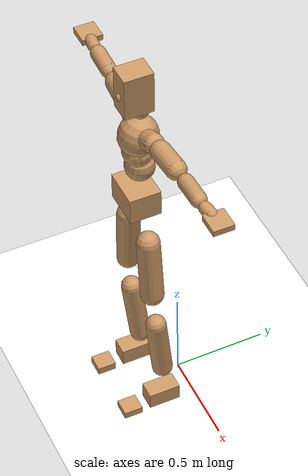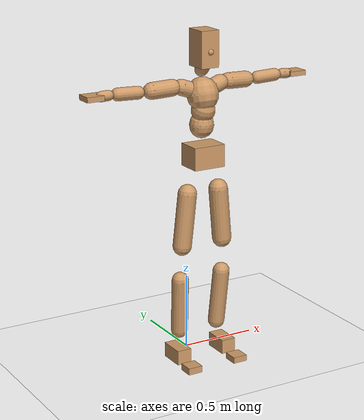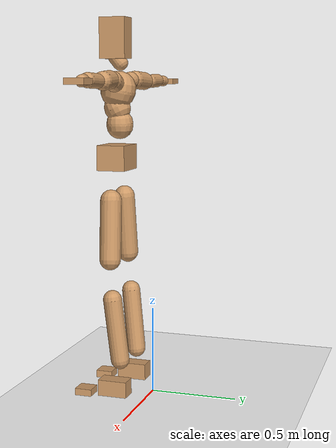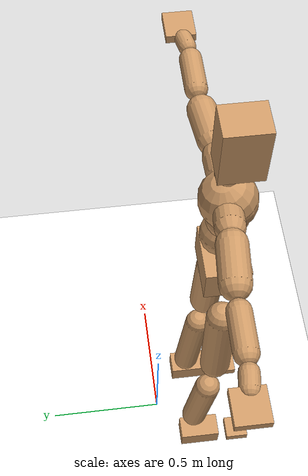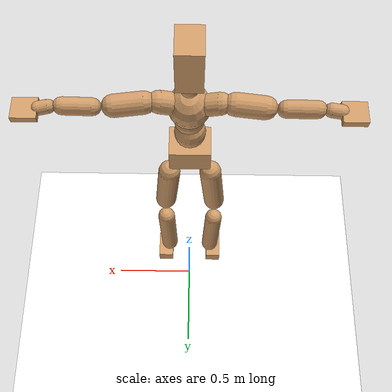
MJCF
<mujoco model="humanoid">
  <option integrator="implicitfast" />

  <visual>
    <global offwidth="1280" offheight="960" />
    <headlight active="1" ambient="0.34 0.34 0.34" diffuse="0.5 0.5 0.5" />
  </visual>

  <default>
    <joint damping="2" stiffness="2" armature="0.01" limited="true" solimplimit="0 .99 .01" />
    <geom condim="1" friction="0.7 0.005 0.0001" solimp=".99 .99 .003" solref="0.015 1" margin="0.001" rgba="0.8 0.6 .4 1" />
    <default class="smplcontact">
      <geom condim="3" friction="1. 0.005 0.0001" solref="0.015 1" solimp="0.98 0.98 0.001" priority="1" />
    </default>
    <default class="stiff_medium">
      <joint stiffness="10" />
    </default>
    <default class="stiff_medium_higher">
      <joint stiffness="50" />
    </default>
    <default class="stiff_high">
      <joint stiffness="100" />
    </default>
  </default>

  <asset>
    <texture type="skybox" builtin="gradient" rgb1="0.99 0.99 0.99" rgb2="0.608 0.828 0.892" width="100" />
    <texture builtin="flat" height="1278" mark="cross" markrgb="1 1 1" name="texgeom" random="0.01" rgb1="0.8 0.6 0.4" rgb2="0.8 0.6 0.4" type="cube" width="127" />
    <texture name="texplane" type="2d" builtin="checker" markrgb="1 1 1" rgb1="0.756 0.772 0.76" rgb2="0.6 0.6 0.6" width="100" height="100" />
    <material name="MatPlane" reflectance="0.5" texture="texplane" texrepeat="1 1" texuniform="true" />
    <material name="geom" texture="texgeom" texuniform="true" />
  </asset>

  <worldbody>
    <light name="tracking_light" pos="0 0 7" dir="0 0 -1" directional="true" cutoff="100" exponent="1" diffuse="1 1 1" specular="0.1 0.1 0.1" mode="trackcom" />
    <camera name="back" pos="0 3 2.4" xyaxes="-1 0 0 0 -1 2" mode="trackcom" />
    <camera name="side" pos="-3 0 2.4" xyaxes="0 -1 0 1 0 2" mode="trackcom" />
    <camera name="front_side" pos="-2.8 -2.8 0.8" xyaxes="0.5 -0.5 0 0.1 0.1 1" mode="trackcom" />
    <geom condim="3" name="floor" pos="0 0 0" rgba="1 1 1 1" size="100 100 .2" type="plane" material="MatPlane" />
    <body name="Pelvis" pos="-0.0018 -0.2233 1.39425" euler="90 0 0">
      <site name="Pelvis" size="0.01" />
      <freejoint name="Pelvis" />
      <geom type="box" pos="-0.0000 -0.0121 -0.0055" size="0.1069 0.0722 0.083" quat="1.0000 0.0000 0.0000 0.0000" density="3165.830099" name="Pelvis" />
      <body name="L_Hip" pos="0.10425 -0.1371 -0.0102">
        <joint name="L_Hip_x" type="hinge" pos="0 0 0" axis="1 0 0" stiffness="20.010395760869564" range="-160.0 22.92" class="stiff_medium" damping="35.828196311411354" armature="0.02851095036953482"/>
        <joint name="L_Hip_y" type="hinge" pos="0 0 0" axis="0 1 0" stiffness="19.865808913043477" range="-70.0 70.0" class="stiff_medium" damping="19.516651798556293" armature="0.01917363139318227"/>
        <joint name="L_Hip_z" type="hinge" pos="0 0 0" axis="0 0 1" stiffness="19.889777717391304" range="-28.65 90.0" class="stiff_medium" damping="23.81898353912802" armature="0.028524400066129187"/>
        <geom type="capsule" density="2040.816327" fromto="0.01035 -0.1125 -0.00135 0.0411 -0.4503 -0.0054" size="0.0615" name="L_Hip" />
        <body name="L_Knee" pos="0.05145 -0.5628 -0.00675">
          <joint name="L_Knee_x" type="hinge" pos="0 0 0" axis="1 0 0" range="-5.16 171.89" damping="17.97370958314121" armature="0.026396428561925697" stiffness="3.824549543478261"/>
          <joint name="L_Knee_y" type="hinge" pos="0 0 0" axis="0 1 0" range="-4.58 6.88" damping="14.94132977962483" armature="0.017722990590982583" stiffness="3.9363301589371975"/>
          <joint name="L_Knee_z" type="hinge" pos="0 0 0" axis="0 0 1" range="-6.88 4.58" damping="17.919426580121165" armature="0.02645515953053644" stiffness="3.7930437608695655"/>
          <geom type="capsule" density="1234.567901" fromto="-0.00405 -0.1194 -0.01305 -0.01635 -0.4776 -0.0525" size="0.0541" name="L_Knee" />
          <body name="L_Ankle" pos="-0.0204 -0.597 -0.06555">
            <joint name="L_Ankle_x" type="hinge" pos="0 0 0" axis="1 0 0" range="-45.84 45.84" class="stiff_medium" damping="9.919510798854871" armature="0.018221610090481188" stiffness="15.0"/>
            <joint name="L_Ankle_y" type="hinge" pos="0 0 0" axis="0 1 0" range="-74.48 22.92" class="stiff_medium" damping="4.917952818000751" armature="0.017915748088949284" stiffness="15.0"/>
            <joint name="L_Ankle_z" type="hinge" pos="0 0 0" axis="0 0 1" range="-4.58 4.58" class="stiff_medium" damping="9.269968981325572" armature="0.01591339350272931" stiffness="15.0"/>
            <geom type="box" pos="0.03495 -0.03585 0.0363" size="0.0483 0.0464 0.085" quat="1.0000 0.0000 0.0000 0.0000" density="449.071558" name="L_Ankle" class="smplcontact" />
            <body name="L_Toe" pos="0.0396 -0.0837 0.17895">
              <joint name="L_Toe_x" type="hinge" pos="0 0 0" axis="1 0 0" range="-91.67 22.92" armature="0.014752348892847546" damping="2.975131818207141" stiffness="3.0"/>
              <joint name="L_Toe_y" type="hinge" pos="0 0 0" axis="0 1 0" range="-4.58 4.58" armature="0.013348413454862205" damping="2.8300261611718933" stiffness="3.0"/>
              <joint name="L_Toe_z" type="hinge" pos="0 0 0" axis="0 0 1" range="-4.58 4.58" armature="0.01050973156573245" damping="2.5111429547995607" stiffness="3.0"/>
              <geom type="box" pos="-0.0045 0.00825 0.0372" size="0.0478 0.02 0.0496" quat="1.0000 0.0000 0.0000 0.0000" density="423.206892" name="L_Toe" class="smplcontact" />
            </body>
          </body>
        </body>
      </body>
      <body name="R_Hip" pos="-0.10155 -0.13575 -0.00645">
        <joint name="R_Hip_x" type="hinge" pos="0 0 0" axis="1 0 0" stiffness="20.010395760869564" range="-160.0 22.92" class="stiff_medium" damping="35.828196311411354" armature="0.02851095036953482"/>
        <joint name="R_Hip_y" type="hinge" pos="0 0 0" axis="0 1 0" stiffness="19.865808913043477" range="-70.0 70.0" class="stiff_medium" damping="19.516651798556293" armature="0.01917363139318227"/>
        <joint name="R_Hip_z" type="hinge" pos="0 0 0" axis="0 0 1" stiffness="19.889777717391304" range="-90.0 28.65" class="stiff_medium" damping="23.81898353912802" armature="0.028524400066129187"/>
        <geom type="capsule" density="2040.816327" fromto="-0.01155 -0.11475 -0.0027 -0.0459 -0.45915 -0.01065" size="0.0606" name="R_Hip" />
        <body name="R_Knee" pos="-0.05745 -0.5739 -0.01335">
          <joint name="R_Knee_x" type="hinge" pos="0 0 0" axis="1 0 0" range="-5.16 171.89" damping="17.97370958314121" armature="0.026396428561925697" stiffness="3.824549543478261"/>
          <joint name="R_Knee_y" type="hinge" pos="0 0 0" axis="0 1 0" range="-6.88 4.58" damping="14.94132977962483" armature="0.017722990590982583" stiffness="3.9363301589371975"/>
          <joint name="R_Knee_z" type="hinge" pos="0 0 0" axis="0 0 1" range="-4.58 6.88" damping="17.919426580121165" armature="0.02645515953053644" stiffness="3.7930437608695655"/>
          <geom type="capsule" density="1234.567901" fromto="0.0048 -0.11955 -0.01275 0.0189 -0.47805 -0.0507" size="0.0541" name="R_Knee" />
          <body name="R_Ankle" pos="0.0237 -0.5976 -0.06345">
            <joint name="R_Ankle_x" type="hinge" pos="0 0 0" axis="1 0 0" range="-45.84 45.84" class="stiff_medium" damping="9.919510798854871" armature="0.018221610090481188" stiffness="15.0"/>
            <joint name="R_Ankle_y" type="hinge" pos="0 0 0" axis="0 1 0" range="-22.92 74.48" class="stiff_medium" damping="4.917952818000751" armature="0.017915748088949284" stiffness="15.0"/>
            <joint name="R_Ankle_z" type="hinge" pos="0 0 0" axis="0 0 1" range="-4.58 4.58" class="stiff_medium" damping="9.269968981325572" armature="0.01591339350272931" stiffness="15.0"/>
            <geom type="box" pos="-0.0318 -0.0261 0.0384" size="0.0483 0.0478 0.0865" quat="1.0000 0.0000 0.0000 0.0000" density="434.700981" name="R_Ankle" class="smplcontact" />
            <body name="R_Toe" pos="-0.0381 -0.07215 0.18495">
              <joint name="R_Toe_x" type="hinge" pos="0 0 0" axis="1 0 0" range="-91.67 22.92" armature="0.014752348892847546" damping="2.975131818207141" stiffness="3.0"/>
              <joint name="R_Toe_y" type="hinge" pos="0 0 0" axis="0 1 0" range="-4.58 4.58" armature="0.013348413454862205" damping="2.8300261611718933" stiffness="3.0"/>
              <joint name="R_Toe_z" type="hinge" pos="0 0 0" axis="0 0 1" range="-4.58 4.58" armature="0.01050973156573245" damping="2.5111429547995607" stiffness="3.0"/>
              <geom type="box" pos="0.0063 0.00675 0.03405" size="0.0479 0.0216 0.0493" quat="1.0000 0.0000 0.0000 0.0000" density="407.384095" name="R_Toe" class="smplcontact" />
            </body>
          </body>
        </body>
      </body>
      <body name="Torso" pos="-0.0025 0.109 -0.0267">
        <joint name="Torso_x" type="hinge" pos="0 0 0" axis="1 0 0" range="-25.78 57.3" class="stiff_medium" damping="14.368828481187117" armature="0.009518929822817207" stiffness="9.63989"/>
        <joint name="Torso_y" type="hinge" pos="0 0 0" axis="0 1 0" range="-57.3 57.3" class="stiff_high" damping="17.03261776899825" armature="0.007489541703378379" stiffness="96.83839130434782"/>
        <joint name="Torso_z" type="hinge" pos="0 0 0" axis="0 0 1" range="-34.38 34.38" class="stiff_high" damping="18.53540157409633" armature="0.008825226346331871" stiffness="97.32359772727271"/>
        <geom type="capsule" density="2040.816327" fromto="0.0025 0.0608 0.0005 0.003 0.0743 0.0006" size="0.0769" name="Torso" />
        <body name="Spine" pos="0.0055 0.1352 0.0011">
          <joint name="Spine_x" type="hinge" pos="0 0 0" axis="1 0 0" stiffness="9.579701739130435" range="-25.78 57.3" class="stiff_medium" damping="14.264620493957935" armature="0.009440303089812753"/>
          <joint name="Spine_y" type="hinge" pos="0 0 0" axis="0 1 0" stiffness="9.580887826086956" range="-57.3 57.3" class="stiff_high" damping="6.768786682343357" armature="0.007471983870182018"/>
          <joint name="Spine_z" type="hinge" pos="0 0 0" axis="0 0 1" stiffness="19.031785652173912" range="-34.38 34.38" class="stiff_high" damping="10.695210451271533" armature="0.00834769619738185"/>
          <geom type="capsule" density="2040.816327" fromto="0.0007 0.0238 0.0114 0.0008 0.0291 0.014" size="0.0755" name="Spine" />
          <body name="Chest" pos="0.0015 0.0529 0.0254">
            <joint name="Chest_x" type="hinge" pos="0 0 0" axis="1 0 0" stiffness="9.409094782608697" range="-25.78 57.3" class="stiff_medium" damping="14.104409531967354" armature="0.009396788619791423"/>
            <joint name="Chest_y" type="hinge" pos="0 0 0" axis="0 1 0" stiffness="8.884800227272727" range="-57.3 57.3" class="stiff_high" damping="6.515670116194" armature="0.007466043829259931"/>
            <joint name="Chest_z" type="hinge" pos="0 0 0" axis="0 0 1" stiffness="18.982618260869568" range="-34.38 34.38" class="stiff_high" damping="10.547007863759625" armature="0.008138979020284558"/>
            <geom type="capsule" density="2040.816327" fromto="-0.0009 0.0682 -0.0173 -0.001 0.0833 -0.0212" size="0.1002" name="Chest" />
            <body name="Neck" pos="-0.0028 0.2139 -0.0429">
              <joint name="Neck_x" type="hinge" pos="0 0 0" axis="1 0 0" range="-28.65 57.3" class="stiff_medium_higher" damping="10.000000000000007" armature="0.010000000000000016" stiffness="50.0"/>
              <joint name="Neck_y" type="hinge" pos="0 0 0" axis="0 1 0" range="-40.11 40.11" class="stiff_medium_higher" damping="10.0" armature="0.010000000000000002" stiffness="50.0"/>
              <joint name="Neck_z" type="hinge" pos="0 0 0" axis="0 0 1" range="-40.11 40.11" class="stiff_medium_higher" damping="9.999999999999979" armature="0.009999999999999957" stiffness="50.0"/>
              <geom type="capsule" density="1000" fromto="0.001 0.013 0.0103 0.0041 0.052 0.0411" size="0.0436" name="Neck" />
              <body name="Head" pos="0.0052 0.065 0.0513">
                <joint name="Head_x" type="hinge" pos="0 0 0" axis="1 0 0" range="-28.65 57.3" class="stiff_medium_higher" damping="2.000000000000001" armature="0.010000000000000009" stiffness="50.0"/>
                <joint name="Head_y" type="hinge" pos="0 0 0" axis="0 1 0" range="-40.11 40.11" class="stiff_medium_higher" damping="1.9999999999999998" armature="0.009999999999999998" stiffness="50.0"/>
                <joint name="Head_z" type="hinge" pos="0 0 0" axis="0 0 1" range="-40.11 40.11" class="stiff_medium_higher" damping="1.9999999999999956" armature="0.009999999999999957" stiffness="50.0"/>
                <geom type="box" pos="-0.0042 0.0876 -0.0116" size="0.0606 0.1154 0.076" quat="1.0000 0.0000 0.0000 0.0000" density="1018.069894" name="Head" />
                <geom type="capsule" name="nose" size="0.02 0.01" pos="0 0.07 0.05" quat="1 0 0 0" mass="0" contype="0" conaffinity="0" />
              </body>
            </body>
            <body name="L_Thorax" pos="0.069935 0.108009 -0.0302637">
              <joint name="L_Thorax_x" type="hinge" pos="0 0 0" axis="1 0 0" range="-10.89 4.58" class="stiff_medium_higher" damping="16.505477260399466" armature="0.008237289712880578" stiffness="41.34108260869564"/>
              <joint name="L_Thorax_y" type="hinge" pos="0 0 0" axis="0 1 0" range="-28.65 17.19" class="stiff_medium_higher" damping="15.61471016999635" armature="0.007397181758642918" stiffness="41.201362499999995"/>
              <joint name="L_Thorax_z" type="hinge" pos="0 0 0" axis="0 0 1" range="-31.51 40.11" class="stiff_medium_higher" damping="15.614286291485106" armature="0.007396422580499296" stiffness="41.203354347826085"/>
              <geom type="capsule" density="1000" fromto="0.0161525 0.00541375 -0.0015975 0.06461 0.021655 -0.00630125" size="0.0521" name="L_Thorax" />
              <body name="L_Shoulder" pos="0.0807625 0.0270687 -0.00789875">
                <joint name="L_Shoulder_x" type="hinge" pos="0 0 0" axis="1 0 0" range="-97.4 97.4" class="stiff_medium" damping="5.052350459499108" armature="0.008561219507330948" stiffness="8.282258913043478"/>
                <joint name="L_Shoulder_y" type="hinge" pos="0 0 0" axis="0 1 0" range="-108.86 80.21" class="stiff_medium" damping="4.696705326036948" armature="0.0074248281922430735" stiffness="8.252731521739129"/>
                <joint name="L_Shoulder_z" type="hinge" pos="0 0 0" axis="0 0 1" range="-97.4 85.94" class="stiff_medium" damping="4.6961947056523545" armature="0.007423822707357082" stiffness="8.252054673913044"/>
                <geom type="capsule" density="1000" fromto="0.0460612 -0.0023075 -0.00488125 0.184334 -0.0090525 -0.019525" size="0.0517" name="L_Shoulder" />
                <body name="L_Elbow" pos="0.230395 -0.01136 -0.0244062">
                  <joint name="L_Elbow_x" type="hinge" pos="0 0 0" axis="1 0 0" range="-17.19 4.58" damping="4.357834099746246" armature="0.009089595760699684" stiffness="1.6714246521739127"/>
                  <joint name="L_Elbow_y" type="hinge" pos="0 0 0" axis="0 1 0" range="-180.0 17.19" damping="3.973981053627214" armature="0.007559999182253774" stiffness="1.6711668913043478"/>
                  <joint name="L_Elbow_z" type="hinge" pos="0 0 0" axis="0 0 1" range="-100.84 4.58" damping="3.9731711614276417" armature="0.007554721526974191" stiffness="1.6716527826086958"/>
                  <geom type="capsule" density="1000" fromto="0.0441975 0.0015975 -0.0001775 0.176967 0.00639 -0.00079875" size="0.0405" name="L_Elbow" />
                  <body name="L_Wrist" pos="0.221165 0.0079875 -0.001065">
                    <joint name="L_Wrist_x" type="hinge" pos="0 0 0" axis="1 0 0" range="-180.0 22.92" armature="0.009268388983615782" damping="1.7956064308763255" stiffness="1.7393543043478261"/>
                    <joint name="L_Wrist_y" type="hinge" pos="0 0 0" axis="0 1 0" range="-17.19 17.19" armature="0.008039907338787643" damping="1.6695087244197107" stiffness="1.7333902391304346"/>
                    <joint name="L_Wrist_z" type="hinge" pos="0 0 0" axis="0 0 1" range="-22.92 22.92" armature="0.007970783232335125" damping="1.6634253394624978" stiffness="1.7357038695652176"/>
                    <geom type="capsule" density="1000" fromto="0.01491 -0.00142 -0.0026625 0.05964 -0.00576875 -0.01065" size="0.0318" name="L_Wrist" class="smplcontact" />
                    <body name="L_Hand" pos="0.07455 -0.0072775 -0.0132237">
                      <joint name="L_Hand_x" type="hinge" pos="0 0 0" axis="1 0 0" range="-17.19 17.19" armature="0.009907489981019835" damping="1.8754085016113509" stiffness="1.7749990434782612"/>
                      <joint name="L_Hand_y" type="hinge" pos="0 0 0" axis="0 1 0" range="-51.57 51.57" armature="0.00888121416433484" damping="1.775620829266199" stiffness="1.7749990434782612"/>
                      <joint name="L_Hand_z" type="hinge" pos="0 0 0" axis="0 0 1" range="-91.67 91.67" armature="0.008607646402110739" damping="1.7480597104275448" stiffness="1.7749990000000002"/>
                      <geom type="box" pos="0.0437537 0.0008875 -0.0051475" size="0.0585 0.0158 0.0538" quat="1.0000 0.0000 0.0000 0.0000" density="400.552564" name="L_Hand" class="smplcontact" />
                    </body>
                  </body>
                </body>
              </body>
            </body>
            <body name="R_Thorax" pos="-0.0725975 0.105435 -0.0342575">
              <joint name="R_Thorax_x" type="hinge" pos="0 0 0" axis="1 0 0" range="-10.89 4.58" class="stiff_medium_higher" damping="16.505477260399466" armature="0.008237289712880578" stiffness="41.34108260869564"/>
              <joint name="R_Thorax_y" type="hinge" pos="0 0 0" axis="0 1 0" range="-17.19 28.65" class="stiff_medium_higher" damping="15.61471016999635" armature="0.007397181758642918" stiffness="41.201362499999995"/>
              <joint name="R_Thorax_z" type="hinge" pos="0 0 0" axis="0 0 1" range="-40.11 31.51" class="stiff_medium_higher" damping="15.614286291485106" armature="0.007396422580499296" stiffness="41.203354347826085"/>
              <geom type="capsule" density="1000" fromto="-0.01704 0.00576875 -0.0015975 -0.06816 0.023075 -0.00647875" size="0.0511" name="R_Thorax" />
              <body name="R_Shoulder" pos="-0.0852 0.0289325 -0.00807625">
                <joint name="R_Shoulder_x" type="hinge" pos="0 0 0" axis="1 0 0" range="-97.4 97.4" class="stiff_medium" damping="5.052350459499108" armature="0.008561219507330948" stiffness="8.282258913043478"/>
                <joint name="R_Shoulder_y" type="hinge" pos="0 0 0" axis="0 1 0" range="-80.21 108.86" class="stiff_medium" damping="4.696705326036948" armature="0.0074248281922430735" stiffness="8.252731521739129"/>
                <joint name="R_Shoulder_z" type="hinge" pos="0 0 0" axis="0 0 1" range="-85.94 97.4" class="stiff_medium" damping="4.6961947056523545" armature="0.007423822707357082" stiffness="8.252054673913044"/>
                <geom type="capsule" density="1000" fromto="-0.0449963 -0.00239625 -0.00381625 -0.180163 -0.00949625 -0.0151763" size="0.0531" name="R_Shoulder" />
                <body name="R_Elbow" pos="-0.225159 -0.0118037 -0.0189925">
                  <joint name="R_Elbow_x" type="hinge" pos="0 0 0" axis="1 0 0" range="-17.19 4.58" damping="4.357834099746246" armature="0.009089595760699684" stiffness="1.6714246521739127"/>
                  <joint name="R_Elbow_y" type="hinge" pos="0 0 0" axis="0 1 0" range="-17.19 180.0" damping="3.973981053627214" armature="0.007559999182253774" stiffness="1.6711668913043478"/>
                  <joint name="R_Elbow_z" type="hinge" pos="0 0 0" axis="0 0 1" range="-4.58 100.84" damping="3.9731711614276417" armature="0.007554721526974191" stiffness="1.6716527826086958"/>
                  <geom type="capsule" density="1000" fromto="-0.0453512 0.00142 -0.00097625 -0.181227 0.0055025 -0.003905" size="0.0408" name="R_Elbow" />
                  <body name="R_Wrist" pos="-0.226579 0.0069225 -0.00497">
                    <joint name="R_Wrist_x" type="hinge" pos="0 0 0" axis="1 0 0" range="-180.0 22.92" armature="0.009268388983615782" damping="1.7956064308763255" stiffness="1.7393543043478261"/>
                    <joint name="R_Wrist_y" type="hinge" pos="0 0 0" axis="0 1 0" range="-17.19 17.19" armature="0.008039907338787643" damping="1.6695087244197107" stiffness="1.7333902391304346"/>
                    <joint name="R_Wrist_z" type="hinge" pos="0 0 0" axis="0 0 1" range="-22.92 22.92" armature="0.007970783232335125" damping="1.6634253394624978" stiffness="1.7357038695652176"/>
                    <geom type="capsule" density="1000" fromto="-0.0149987 -0.001065 -0.00186375 -0.0600837 -0.00434875 -0.00736625" size="0.0326" name="R_Wrist" class="smplcontact" />
                    <body name="R_Hand" pos="-0.0750825 -0.00541375 -0.00914125">
                      <joint name="R_Hand_x" type="hinge" pos="0 0 0" axis="1 0 0" range="-17.19 17.19" armature="0.009907489981019835" damping="1.8754085016113509" stiffness="1.7749990434782612"/>
                      <joint name="R_Hand_y" type="hinge" pos="0 0 0" axis="0 1 0" range="-51.57 51.57" armature="0.00888121416433484" damping="1.775620829266199" stiffness="1.7749990434782612"/>
                      <joint name="R_Hand_z" type="hinge" pos="0 0 0" axis="0 0 1" range="-91.67 91.67" armature="0.008607646402110739" damping="1.7480597104275448" stiffness="1.7749990000000002"/>
                      <geom type="box" pos="-0.0410025 -0.00079875 -0.00701125" size="0.0569 0.0164 0.0546" quat="1.0000 0.0000 0.0000 0.0000" density="403.679611" name="R_Hand" class="smplcontact" />
                    </body>
                  </body>
                </body>
              </body>
            </body>
          </body>
        </body>
      </body>
    </body>
  </worldbody>
  <actuator>
    <general name="L_Hip_x" joint="L_Hip_x" biastype="affine" gainprm="574.9588296583441" biasprm="-430.87336742601036 -360.18712369565213 -4.7770928415215135" ctrllimited="true" ctrlrange="-1 1" forcerange="-720.3742473913043 720.3742473913043" />
    <general name="L_Hip_y" joint="L_Hip_y" biastype="affine" gainprm="436.8719553718521" biasprm="0.0 -357.5845604347826 -3.9033303597112585" ctrllimited="true" ctrlrange="-1 1" forcerange="-715.1691208695652 715.1691208695652" />
    <general name="L_Hip_z" joint="L_Hip_z" biastype="affine" gainprm="370.6957007307449" biasprm="191.67451529566958 -358.0159989130435 -4.763796707825604" ctrllimited="true" ctrlrange="-1 1" forcerange="-716.031997826087 716.031997826087" />
    <general name="L_Knee_x" joint="L_Knee_x" biastype="affine" gainprm="531.82176085622" biasprm="500.82260484358966 -344.2094589130435 -4.493427395785303" ctrllimited="true" ctrlrange="-1 1" forcerange="-688.418917826087 688.418917826087" />
    <general name="L_Knee_y" joint="L_Knee_y" biastype="affine" gainprm="35.429581030491285" biasprm="7.110648897917099 -354.26971430434776 -3.7353324449062075" ctrllimited="true" ctrlrange="-1 1" forcerange="-708.5394286086955 708.5394286086955" />
    <general name="L_Knee_z" joint="L_Knee_z" biastype="affine" gainprm="34.1399084558018" biasprm="-6.851814087988146 -341.3739384782609 -4.479856645030291" ctrllimited="true" ctrlrange="-1 1" forcerange="-682.7478769565218 682.7478769565218" />
    <general name="L_Ankle_x" joint="L_Ankle_x" biastype="affine" gainprm="108.0079554304171" biasprm="0.0 -135.0 -3.3065035996182903" ctrllimited="true" ctrlrange="-1 1" forcerange="-270.0 270.0" />
    <general name="L_Ankle_y" joint="L_Ankle_y" biastype="affine" gainprm="114.74667167236721" biasprm="-60.742693957158664 -135.0 -3.278635212000501" ctrllimited="true" ctrlrange="-1 1" forcerange="-270.0 270.0" />
    <general name="L_Ankle_z" joint="L_Ankle_z" biastype="affine" gainprm="10.791370765080938" biasprm="0.0 -135.0 -3.0899896604418577" ctrllimited="true" ctrlrange="-1 1" forcerange="-270.0 270.0" />
    <general name="L_Toe_x" joint="L_Toe_x" biastype="affine" gainprm="107.99853065245631" biasprm="-64.79534848028948 -108.0 -1.1900527272828565" ctrllimited="true" ctrlrange="-1 1" forcerange="-216.0 216.0" />
    <general name="L_Toe_y" joint="L_Toe_y" biastype="affine" gainprm="8.633096612064751" biasprm="0.0 -108.0 -1.1320104644687574" ctrllimited="true" ctrlrange="-1 1" forcerange="-216.0 216.0" />
    <general name="L_Toe_z" joint="L_Toe_z" biastype="affine" gainprm="8.633096612064751" biasprm="0.0 -108.0 -1.0044571819198242" ctrllimited="true" ctrlrange="-1 1" forcerange="-216.0 216.0" />
    <general name="R_Hip_x" joint="R_Hip_x" biastype="affine" gainprm="574.9588296583441" biasprm="-430.87336742601036 -360.18712369565213 -4.7770928415215135" ctrllimited="true" ctrlrange="-1 1" forcerange="-720.3742473913043 720.3742473913043" />
    <general name="R_Hip_y" joint="R_Hip_y" biastype="affine" gainprm="436.8719553718521" biasprm="0.0 -357.5845604347826 -3.9033303597112585" ctrllimited="true" ctrlrange="-1 1" forcerange="-715.1691208695652 715.1691208695652" />
    <general name="R_Hip_z" joint="R_Hip_z" biastype="affine" gainprm="370.6957007307449" biasprm="-191.67451529566958 -358.0159989130435 -4.763796707825604" ctrllimited="true" ctrlrange="-1 1" forcerange="-716.031997826087 716.031997826087" />
    <general name="R_Knee_x" joint="R_Knee_x" biastype="affine" gainprm="531.82176085622" biasprm="500.82260484358966 -344.2094589130435 -4.493427395785303" ctrllimited="true" ctrlrange="-1 1" forcerange="-688.418917826087 688.418917826087" />
    <general name="R_Knee_y" joint="R_Knee_y" biastype="affine" gainprm="35.429581030491285" biasprm="-7.110648897917099 -354.26971430434776 -3.7353324449062075" ctrllimited="true" ctrlrange="-1 1" forcerange="-708.5394286086955 708.5394286086955" />
    <general name="R_Knee_z" joint="R_Knee_z" biastype="affine" gainprm="34.1399084558018" biasprm="6.851814087988146 -341.3739384782609 -4.479856645030291" ctrllimited="true" ctrlrange="-1 1" forcerange="-682.7478769565218 682.7478769565218" />
    <general name="R_Ankle_x" joint="R_Ankle_x" biastype="affine" gainprm="108.0079554304171" biasprm="0.0 -135.0 -3.3065035996182903" ctrllimited="true" ctrlrange="-1 1" forcerange="-270.0 270.0" />
    <general name="R_Ankle_y" joint="R_Ankle_y" biastype="affine" gainprm="114.74667167236721" biasprm="60.742693957158664 -135.0 -3.278635212000501" ctrllimited="true" ctrlrange="-1 1" forcerange="-270.0 270.0" />
    <general name="R_Ankle_z" joint="R_Ankle_z" biastype="affine" gainprm="10.791370765080938" biasprm="0.0 -135.0 -3.0899896604418577" ctrllimited="true" ctrlrange="-1 1" forcerange="-270.0 270.0" />
    <general name="R_Toe_x" joint="R_Toe_x" biastype="affine" gainprm="107.99853065245631" biasprm="-64.79534848028948 -108.0 -1.1900527272828565" ctrllimited="true" ctrlrange="-1 1" forcerange="-216.0 216.0" />
    <general name="R_Toe_y" joint="R_Toe_y" biastype="affine" gainprm="8.633096612064751" biasprm="0.0 -108.0 -1.1320104644687574" ctrllimited="true" ctrlrange="-1 1" forcerange="-216.0 216.0" />
    <general name="R_Toe_z" joint="R_Toe_z" biastype="affine" gainprm="8.633096612064751" biasprm="0.0 -108.0 -1.0044571819198242" ctrllimited="true" ctrlrange="-1 1" forcerange="-216.0 216.0" />
    <general name="Torso_x" joint="Torso_x" biastype="affine" gainprm="167.73634665718473" biasprm="63.63805544817599 -231.35735999999997 -3.831687594983231" ctrllimited="true" ctrlrange="-1 1" forcerange="-347.03603999999996 347.03603999999996" />
    <general name="Torso_y" joint="Torso_y" biastype="affine" gainprm="232.4292589322953" biasprm="0.0 -232.41213913043478 -3.4065235537996497" ctrllimited="true" ctrlrange="-1 1" forcerange="-348.6182086956522 348.6182086956522" />
    <general name="Torso_z" joint="Torso_z" biastype="affine" gainprm="140.15630407540152" biasprm="0.0 -233.5766345454545 -3.707080314819266" ctrllimited="true" ctrlrange="-1 1" forcerange="-350.3649518181818 350.3649518181818" />
    <general name="Spine_x" joint="Spine_x" biastype="affine" gainprm="166.68905680326418" biasprm="63.24072063600006 -229.91284173913044 -3.8038987983887824" ctrllimited="true" ctrlrange="-1 1" forcerange="-344.86926260869564 344.86926260869564" />
    <general name="Spine_y" joint="Spine_y" biastype="affine" gainprm="229.95824562307234" biasprm="0.0 -229.94130782608693 -3.3843933411716787" ctrllimited="true" ctrlrange="-1 1" forcerange="-344.9119617391304 344.9119617391304" />
    <general name="Spine_z" joint="Spine_z" biastype="affine" gainprm="137.03895043208345" biasprm="0.0 -228.38142782608696 -3.5650701504238445" ctrllimited="true" ctrlrange="-1 1" forcerange="-342.5721417391305 342.5721417391305" />
    <general name="Chest_x" joint="Chest_x" biastype="affine" gainprm="163.72045575063208" biasprm="62.1144531206057 -225.8182747826087 -3.7611758751912943" ctrllimited="true" ctrlrange="-1 1" forcerange="-338.7274121739131 338.7274121739131" />
    <general name="Chest_y" joint="Chest_y" biastype="affine" gainprm="213.25091265676275" biasprm="0.0 -213.23520545454548 -3.257835058097" ctrllimited="true" ctrlrange="-1 1" forcerange="-319.8528081818182 319.8528081818182" />
    <general name="Chest_z" joint="Chest_z" biastype="affine" gainprm="136.68491913817482" biasprm="0.0 -227.7914191304348 -3.5156692879198745" ctrllimited="true" ctrlrange="-1 1" forcerange="-341.68712869565223 341.68712869565223" />
    <general name="Neck_x" joint="Neck_x" biastype="affine" gainprm="27.00198885760427" biasprm="9.000662952534757 -36.0 -0.8000000000000006" ctrllimited="true" ctrlrange="-1 1" forcerange="-72.0 72.0" />
    <general name="Neck_y" joint="Neck_y" biastype="affine" gainprm="25.20185626709732" biasprm="0.0 -36.0 -0.8" ctrllimited="true" ctrlrange="-1 1" forcerange="-72.0 72.0" />
    <general name="Neck_z" joint="Neck_z" biastype="affine" gainprm="25.20185626709732" biasprm="0.0 -36.0 -0.7999999999999983" ctrllimited="true" ctrlrange="-1 1" forcerange="-72.0 72.0" />
    <general name="Head_x" joint="Head_x" biastype="affine" gainprm="18.001325905069514" biasprm="6.000441968356505 -24.0 -0.8000000000000004" ctrllimited="true" ctrlrange="-1 1" forcerange="-48.0 48.0" />
    <general name="Head_y" joint="Head_y" biastype="affine" gainprm="16.801237511398213" biasprm="0.0 -24.0 -0.7999999999999999" ctrllimited="true" ctrlrange="-1 1" forcerange="-48.0 48.0" />
    <general name="Head_z" joint="Head_z" biastype="affine" gainprm="16.801237511398213" biasprm="0.0 -24.0 -0.7999999999999983" ctrllimited="true" ctrlrange="-1 1" forcerange="-48.0 48.0" />
    <general name="L_Thorax_x" joint="L_Thorax_x" biastype="affine" gainprm="13.394631577926136" biasprm="-5.463485795521264 -99.21859826086956 -1.3204381808319574" ctrllimited="true" ctrlrange="-1 1" forcerange="-198.4371965217391 198.4371965217391" />
    <general name="L_Thorax_y" joint="L_Thorax_y" biastype="affine" gainprm="39.55622155175517" biasprm="-9.889055387938793 -98.88326999999998 -1.2491768135997081" ctrllimited="true" ctrlrange="-1 1" forcerange="-197.76653999999996 197.76653999999996" />
    <general name="L_Thorax_z" joint="L_Thorax_z" biastype="affine" gainprm="61.80526936126262" biasprm="7.421464905150216 -98.88805043478261 -1.2491429033188086" ctrllimited="true" ctrlrange="-1 1" forcerange="-197.77610086956523 197.77610086956523" />
    <general name="L_Shoulder_x" joint="L_Shoulder_x" biastype="affine" gainprm="67.58127247648262" biasprm="0.0 -39.7548427826087 -1.3472934558664287" ctrllimited="true" ctrlrange="-1 1" forcerange="-79.5096855652174 79.5096855652174" />
    <general name="L_Shoulder_y" joint="L_Shoulder_y" biastype="affine" gainprm="65.359534488949" biasprm="-9.904007315324423 -39.613111304347825 -1.252454753609853" ctrllimited="true" ctrlrange="-1 1" forcerange="-79.22622260869565 79.22622260869565" />
    <general name="L_Shoulder_z" joint="L_Shoulder_z" biastype="affine" gainprm="63.37353501870846" biasprm="-3.9612780152416307 -39.609862434782606 -1.2523185881739611" ctrllimited="true" ctrlrange="-1 1" forcerange="-79.21972486956521 79.21972486956521" />
    <general name="L_Elbow_x" joint="L_Elbow_x" biastype="affine" gainprm="11.431286383865702" biasprm="-6.6214295498643345 -60.17128747826086 -0.6972534559593995" ctrllimited="true" ctrlrange="-1 1" forcerange="-120.34257495652172 120.34257495652172" />
    <general name="L_Elbow_y" joint="L_Elbow_y" biastype="affine" gainprm="103.52722727123559" biasprm="-85.47729535995674 -60.16200808695652 -0.6358369685803543" ctrllimited="true" ctrlrange="-1 1" forcerange="-120.32401617391304 120.32401617391304" />
    <general name="L_Elbow_z" joint="L_Elbow_z" biastype="affine" gainprm="55.36291645081259" biasprm="-50.55240312611669 -60.17950017391305 -0.6357073858284227" ctrllimited="true" ctrlrange="-1 1" forcerange="-120.3590003478261 120.3590003478261" />
    <general name="L_Wrist_x" joint="L_Wrist_x" biastype="affine" gainprm="18.480407026716794" biasprm="-14.3056492004567 -10.436125826086958 -0.7182425723505302" ctrllimited="true" ctrlrange="-1 1" forcerange="-20.872251652173915 20.872251652173915" />
    <general name="L_Wrist_y" joint="L_Wrist_y" biastype="affine" gainprm="3.1203322615253337" biasprm="0.0 -10.400341434782607 -0.6678034897678843" ctrllimited="true" ctrlrange="-1 1" forcerange="-20.800682869565215 20.800682869565215" />
    <general name="L_Wrist_z" joint="L_Wrist_z" biastype="affine" gainprm="4.165996137431168" biasprm="0.0 -10.414223217391307 -0.6653701357849992" ctrllimited="true" ctrlrange="-1 1" forcerange="-20.828446434782613 20.828446434782613" />
    <general name="L_Hand_x" joint="L_Hand_x" biastype="affine" gainprm="3.195233626283884" biasprm="0.0 -10.649994260869567 -0.7501634006445403" ctrllimited="true" ctrlrange="-1 1" forcerange="-21.299988521739134 21.299988521739134" />
    <general name="L_Hand_y" joint="L_Hand_y" biastype="affine" gainprm="9.58570087885165" biasprm="0.0 -10.649994260869567 -0.7102483317064796" ctrllimited="true" ctrlrange="-1 1" forcerange="-21.299988521739134 21.299988521739134" />
    <general name="L_Hand_z" joint="L_Hand_z" biastype="affine" gainprm="17.03938681481915" biasprm="0.0 -10.649994000000001 -0.699223884171018" ctrllimited="true" ctrlrange="-1 1" forcerange="-21.299988000000003 21.299988000000003" />
    <general name="R_Thorax_x" joint="R_Thorax_x" biastype="affine" gainprm="13.394631577926136" biasprm="-5.463485795521264 -99.21859826086956 -1.3204381808319574" ctrllimited="true" ctrlrange="-1 1" forcerange="-198.4371965217391 198.4371965217391" />
    <general name="R_Thorax_y" joint="R_Thorax_y" biastype="affine" gainprm="39.55622155175517" biasprm="9.889055387938788 -98.88326999999998 -1.2491768135997081" ctrllimited="true" ctrlrange="-1 1" forcerange="-197.76653999999996 197.76653999999996" />
    <general name="R_Thorax_z" joint="R_Thorax_z" biastype="affine" gainprm="61.80526936126262" biasprm="-7.421464905150216 -98.88805043478261 -1.2491429033188086" ctrllimited="true" ctrlrange="-1 1" forcerange="-197.77610086956523 197.77610086956523" />
    <general name="R_Shoulder_x" joint="R_Shoulder_x" biastype="affine" gainprm="67.58127247648262" biasprm="0.0 -39.7548427826087 -1.3472934558664287" ctrllimited="true" ctrlrange="-1 1" forcerange="-79.5096855652174 79.5096855652174" />
    <general name="R_Shoulder_y" joint="R_Shoulder_y" biastype="affine" gainprm="65.359534488949" biasprm="9.904007315324423 -39.613111304347825 -1.252454753609853" ctrllimited="true" ctrlrange="-1 1" forcerange="-79.22622260869565 79.22622260869565" />
    <general name="R_Shoulder_z" joint="R_Shoulder_z" biastype="affine" gainprm="63.37353501870846" biasprm="3.961278015241622 -39.609862434782606 -1.2523185881739611" ctrllimited="true" ctrlrange="-1 1" forcerange="-79.21972486956521 79.21972486956521" />
    <general name="R_Elbow_x" joint="R_Elbow_x" biastype="affine" gainprm="11.431286383865702" biasprm="-6.6214295498643345 -60.17128747826086 -0.6972534559593995" ctrllimited="true" ctrlrange="-1 1" forcerange="-120.34257495652172 120.34257495652172" />
    <general name="R_Elbow_y" joint="R_Elbow_y" biastype="affine" gainprm="103.52722727123559" biasprm="85.47729535995674 -60.16200808695652 -0.6358369685803543" ctrllimited="true" ctrlrange="-1 1" forcerange="-120.32401617391304 120.32401617391304" />
    <general name="R_Elbow_z" joint="R_Elbow_z" biastype="affine" gainprm="55.36291645081259" biasprm="50.55240312611668 -60.17950017391305 -0.6357073858284227" ctrllimited="true" ctrlrange="-1 1" forcerange="-120.3590003478261 120.3590003478261" />
    <general name="R_Wrist_x" joint="R_Wrist_x" biastype="affine" gainprm="18.480407026716794" biasprm="-14.3056492004567 -10.436125826086958 -0.7182425723505302" ctrllimited="true" ctrlrange="-1 1" forcerange="-20.872251652173915 20.872251652173915" />
    <general name="R_Wrist_y" joint="R_Wrist_y" biastype="affine" gainprm="3.1203322615253337" biasprm="0.0 -10.400341434782607 -0.6678034897678843" ctrllimited="true" ctrlrange="-1 1" forcerange="-20.800682869565215 20.800682869565215" />
    <general name="R_Wrist_z" joint="R_Wrist_z" biastype="affine" gainprm="4.165996137431168" biasprm="0.0 -10.414223217391307 -0.6653701357849992" ctrllimited="true" ctrlrange="-1 1" forcerange="-20.828446434782613 20.828446434782613" />
    <general name="R_Hand_x" joint="R_Hand_x" biastype="affine" gainprm="3.195233626283884" biasprm="0.0 -10.649994260869567 -0.7501634006445403" ctrllimited="true" ctrlrange="-1 1" forcerange="-21.299988521739134 21.299988521739134" />
    <general name="R_Hand_y" joint="R_Hand_y" biastype="affine" gainprm="9.58570087885165" biasprm="0.0 -10.649994260869567 -0.7102483317064796" ctrllimited="true" ctrlrange="-1 1" forcerange="-21.299988521739134 21.299988521739134" />
    <general name="R_Hand_z" joint="R_Hand_z" biastype="affine" gainprm="17.03938681481915" biasprm="0.0 -10.649994000000001 -0.699223884171018" ctrllimited="true" ctrlrange="-1 1" forcerange="-21.299988000000003 21.299988000000003" />
  </actuator>
  <contact>
    <exclude body1="Torso" body2="Chest" />
    <exclude body1="Head" body2="Chest" />
    <exclude body1="R_Knee" body2="R_Toe" />
    <exclude body1="R_Knee" body2="L_Ankle" />
    <exclude body1="R_Knee" body2="L_Toe" />
    <exclude body1="L_Knee" body2="L_Toe" />
    <exclude body1="L_Knee" body2="R_Ankle" />
    <exclude body1="L_Knee" body2="R_Toe" />
    <exclude body1="L_Shoulder" body2="Chest" />
    <exclude body1="R_Shoulder" body2="Chest" />
  </contact>
  <sensor>
    <framelinvel name="sensor_Pelvis_framelinvel" objtype="xbody" objname="Pelvis" />
    <framelinvel name="sensor_L_Hip_framelinvel" objtype="xbody" objname="L_Hip" />
    <framelinvel name="sensor_L_Knee_framelinvel" objtype="xbody" objname="L_Knee" />
    <framelinvel name="sensor_L_Ankle_framelinvel" objtype="xbody" objname="L_Ankle" />
    <framelinvel name="sensor_L_Toe_framelinvel" objtype="xbody" objname="L_Toe" />
    <framelinvel name="sensor_R_Hip_framelinvel" objtype="xbody" objname="R_Hip" />
    <framelinvel name="sensor_R_Knee_framelinvel" objtype="xbody" objname="R_Knee" />
    <framelinvel name="sensor_R_Ankle_framelinvel" objtype="xbody" objname="R_Ankle" />
    <framelinvel name="sensor_R_Toe_framelinvel" objtype="xbody" objname="R_Toe" />
    <framelinvel name="sensor_Torso_framelinvel" objtype="xbody" objname="Torso" />
    <framelinvel name="sensor_Spine_framelinvel" objtype="xbody" objname="Spine" />
    <framelinvel name="sensor_Chest_framelinvel" objtype="xbody" objname="Chest" />
    <framelinvel name="sensor_Neck_framelinvel" objtype="xbody" objname="Neck" />
    <framelinvel name="sensor_Head_framelinvel" objtype="xbody" objname="Head" />
    <framelinvel name="sensor_L_Thorax_framelinvel" objtype="xbody" objname="L_Thorax" />
    <framelinvel name="sensor_L_Shoulder_framelinvel" objtype="xbody" objname="L_Shoulder" />
    <framelinvel name="sensor_L_Elbow_framelinvel" objtype="xbody" objname="L_Elbow" />
    <framelinvel name="sensor_L_Wrist_framelinvel" objtype="xbody" objname="L_Wrist" />
    <framelinvel name="sensor_L_Hand_framelinvel" objtype="xbody" objname="L_Hand" />
    <framelinvel name="sensor_R_Thorax_framelinvel" objtype="xbody" objname="R_Thorax" />
    <framelinvel name="sensor_R_Shoulder_framelinvel" objtype="xbody" objname="R_Shoulder" />
    <framelinvel name="sensor_R_Elbow_framelinvel" objtype="xbody" objname="R_Elbow" />
    <framelinvel name="sensor_R_Wrist_framelinvel" objtype="xbody" objname="R_Wrist" />
    <framelinvel name="sensor_R_Hand_framelinvel" objtype="xbody" objname="R_Hand" />
    <frameangvel name="sensor_Pelvis_frameangvel" objtype="xbody" objname="Pelvis" />
    <frameangvel name="sensor_L_Hip_frameangvel" objtype="xbody" objname="L_Hip" />
    <frameangvel name="sensor_L_Knee_frameangvel" objtype="xbody" objname="L_Knee" />
    <frameangvel name="sensor_L_Ankle_frameangvel" objtype="xbody" objname="L_Ankle" />
    <frameangvel name="sensor_L_Toe_frameangvel" objtype="xbody" objname="L_Toe" />
    <frameangvel name="sensor_R_Hip_frameangvel" objtype="xbody" objname="R_Hip" />
    <frameangvel name="sensor_R_Knee_frameangvel" objtype="xbody" objname="R_Knee" />
    <frameangvel name="sensor_R_Ankle_frameangvel" objtype="xbody" objname="R_Ankle" />
    <frameangvel name="sensor_R_Toe_frameangvel" objtype="xbody" objname="R_Toe" />
    <frameangvel name="sensor_Torso_frameangvel" objtype="xbody" objname="Torso" />
    <frameangvel name="sensor_Spine_frameangvel" objtype="xbody" objname="Spine" />
    <frameangvel name="sensor_Chest_frameangvel" objtype="xbody" objname="Chest" />
    <frameangvel name="sensor_Neck_frameangvel" objtype="xbody" objname="Neck" />
    <frameangvel name="sensor_Head_frameangvel" objtype="xbody" objname="Head" />
    <frameangvel name="sensor_L_Thorax_frameangvel" objtype="xbody" objname="L_Thorax" />
    <frameangvel name="sensor_L_Shoulder_frameangvel" objtype="xbody" objname="L_Shoulder" />
    <frameangvel name="sensor_L_Elbow_frameangvel" objtype="xbody" objname="L_Elbow" />
    <frameangvel name="sensor_L_Wrist_frameangvel" objtype="xbody" objname="L_Wrist" />
    <frameangvel name="sensor_L_Hand_frameangvel" objtype="xbody" objname="L_Hand" />
    <frameangvel name="sensor_R_Thorax_frameangvel" objtype="xbody" objname="R_Thorax" />
    <frameangvel name="sensor_R_Shoulder_frameangvel" objtype="xbody" objname="R_Shoulder" />
    <frameangvel name="sensor_R_Elbow_frameangvel" objtype="xbody" objname="R_Elbow" />
    <frameangvel name="sensor_R_Wrist_frameangvel" objtype="xbody" objname="R_Wrist" />
    <frameangvel name="sensor_R_Hand_frameangvel" objtype="xbody" objname="R_Hand" />
    <subtreelinvel name="Chest_subtreelinvel" body="Chest" />
    <gyro name="Pelvis_gyro" site="Pelvis" />
  </sensor>
</mujoco>
